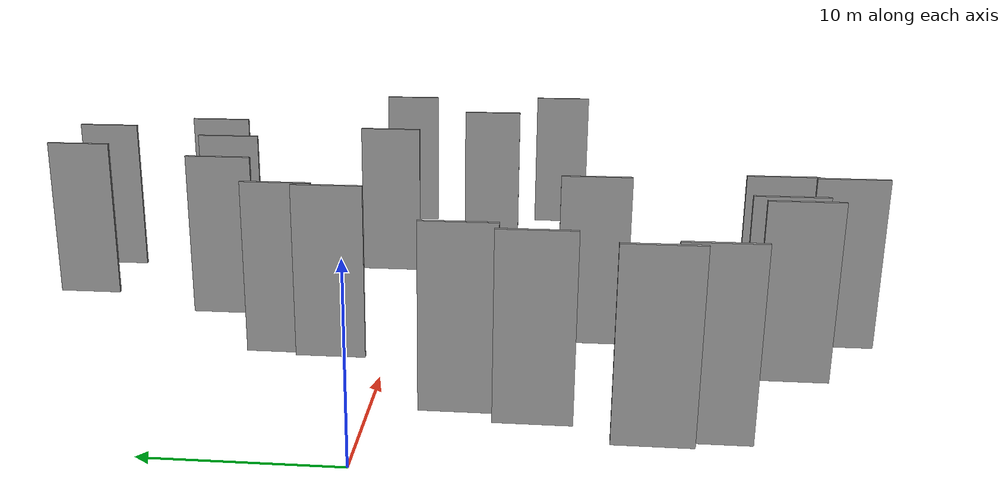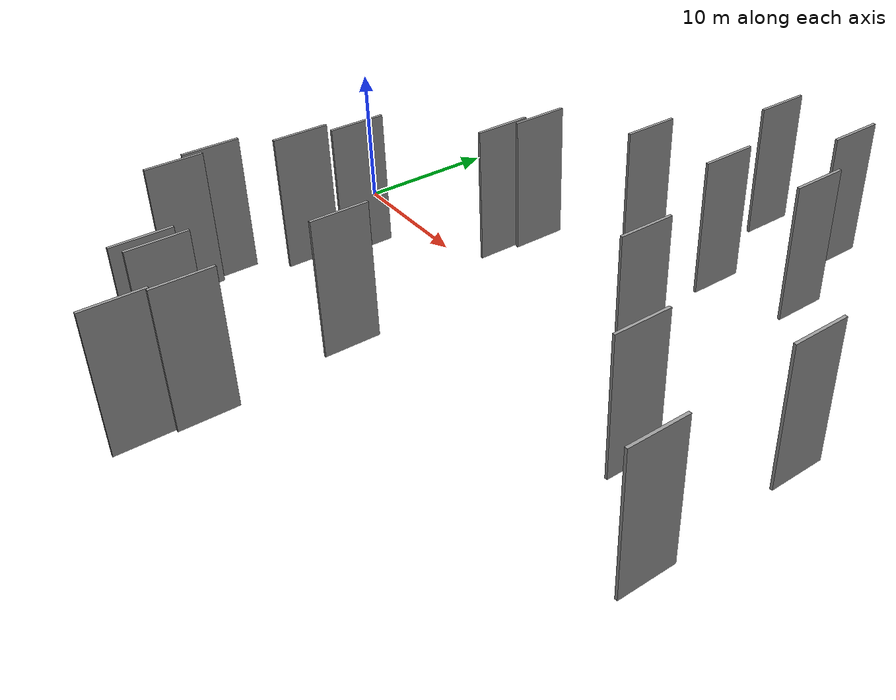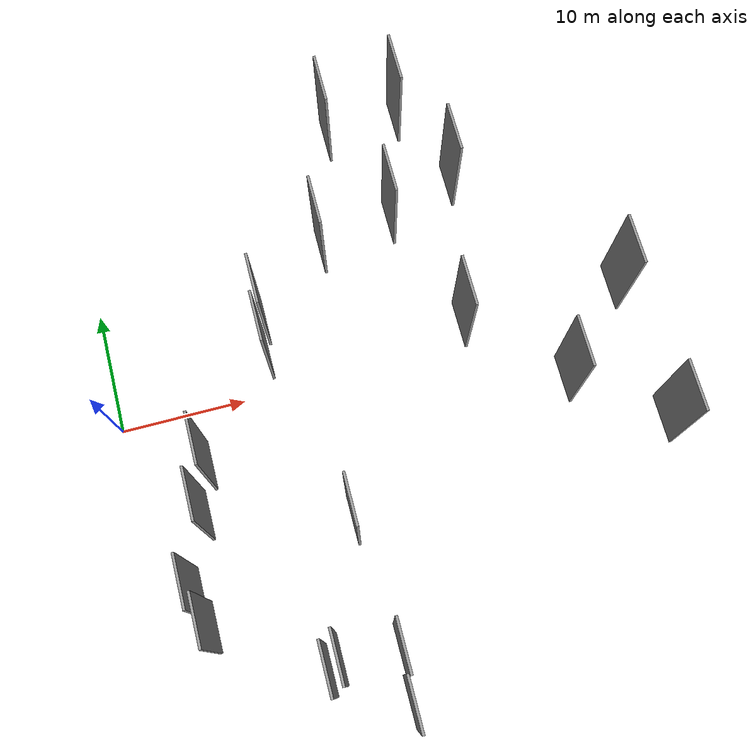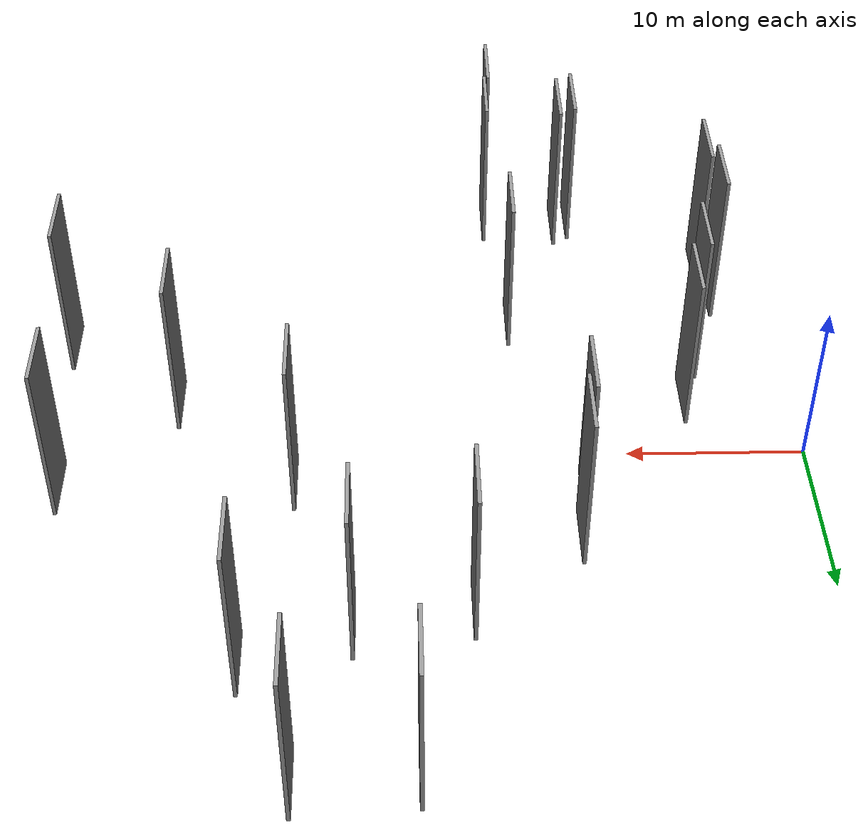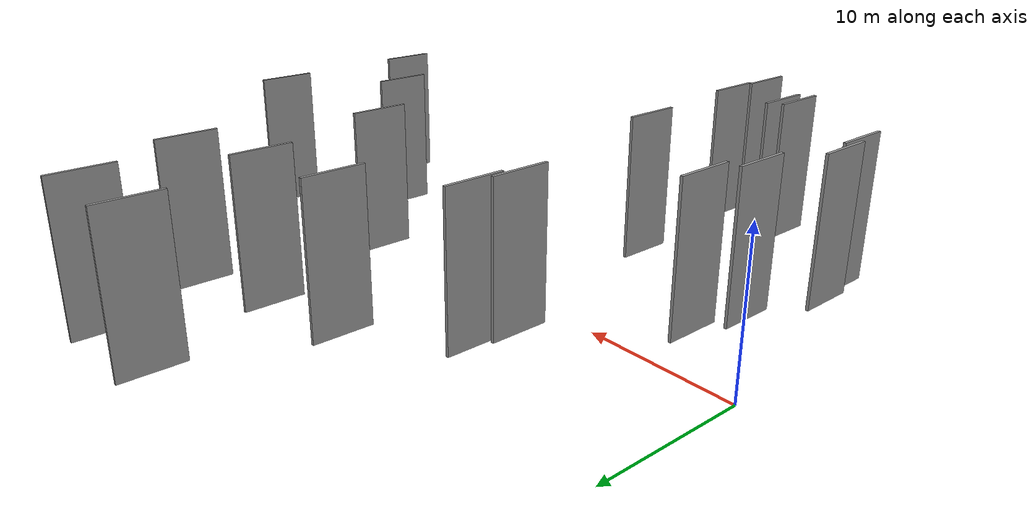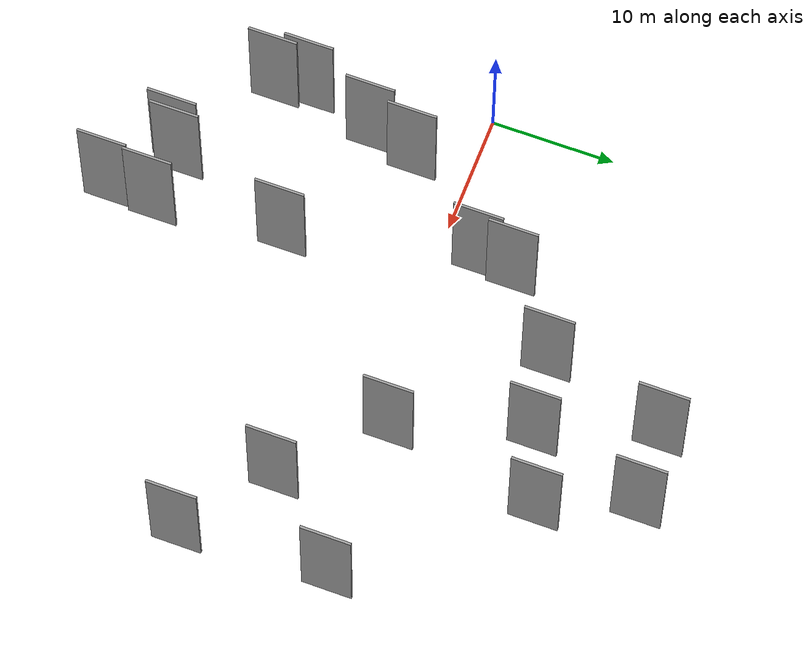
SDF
<sdf version="1.6">
 <world name="default">
  <scene>
   <sky><clouds><speed>12</speed></clouds></sky>
   <ambient>0.4 0.4 0.4 1</ambient>
   <background>0.7 0.7 0.7 1</background>
   <shadows>1</shadows>
  </scene>
  <gravity>0 0 -9.8066</gravity>
  <magnetic_field>6e-06 2.3e-05 -4.2e-05</magnetic_field>
  <physics default="0" name="default_physics" type="ode">
   <ode>
    <solver>
     <type>quick</type>
     <iters>10</iters>
     <sor>1.0</sor>
     <use_dynamic_moi_rescaling>0</use_dynamic_moi_rescaling>
    </solver>
    <constraints>
     <cfm>0</cfm>
     <erp>0.2</erp>
     <contact_max_correcting_vel>100</contact_max_correcting_vel>
     <contact_surface_layer>0.001</contact_surface_layer>
    </constraints>
   </ode>
   <max_step_size>0.004</max_step_size>
   <real_time_factor>1</real_time_factor>
   <real_time_update_rate>250</real_time_update_rate>
  </physics>
  <light name="sun" type="directional">
   <pose>0 0 10 0 0 0</pose>
   <diffuse>0.8 0.8 0.8 1</diffuse>
   <specular>0.2 0.2 0.2 1</specular>
   <attenuation>
    <range>1000</range>
    <constant>0.9</constant>
    <linear>0.01</linear>
    <quadratic>0.001</quadratic>
   </attenuation>
   <direction>-0.5 0.1 -0.9</direction>
  </light>
  <model name="grey_wall_1">
   <static>1</static>
   <pose>3.5172 -14.0131 0.0 0.000000 0.000000 1.570796</pose>
   <link name="link">
    <pose>0 0 5.00 0 0 0</pose>
    <collision name="collision"><geometry><box><size>4.00 0.2 10.00</size></box></geometry></collision>
    <visual name="visual">
     <cast_shadows>0</cast_shadows>
     <geometry><box><size>4.00 0.2 10.00</size></box></geometry>
     <material>
      <script>
       <uri>model://grey_wall/materials/scripts</uri>
       <uri>model://grey_wall/materials/textures</uri>
       <name>vrc/grey_wall</name>
      </script>
     </material>
    </visual>
   </link>
  </model>
  <model name="grey_wall_2">
   <static>1</static>
   <pose>5.2974 -8.2992 0.0 0.000000 0.000000 1.570796</pose>
   <link name="link">
    <pose>0 0 5.00 0 0 0</pose>
    <collision name="collision"><geometry><box><size>4.00 0.2 10.00</size></box></geometry></collision>
    <visual name="visual">
     <cast_shadows>0</cast_shadows>
     <geometry><box><size>4.00 0.2 10.00</size></box></geometry>
     <material>
      <script>
       <uri>model://grey_wall/materials/scripts</uri>
       <uri>model://grey_wall/materials/textures</uri>
       <name>vrc/grey_wall</name>
      </script>
     </material>
    </visual>
   </link>
  </model>
  <model name="grey_wall_3">
   <static>1</static>
   <pose>19.0728 11.2092 0.0 0.000000 0.000000 1.570796</pose>
   <link name="link">
    <pose>0 0 5.00 0 0 0</pose>
    <collision name="collision"><geometry><box><size>4.00 0.2 10.00</size></box></geometry></collision>
    <visual name="visual">
     <cast_shadows>0</cast_shadows>
     <geometry><box><size>4.00 0.2 10.00</size></box></geometry>
     <material>
      <script>
       <uri>model://grey_wall/materials/scripts</uri>
       <uri>model://grey_wall/materials/textures</uri>
       <name>vrc/grey_wall</name>
      </script>
     </material>
    </visual>
   </link>
  </model>
  <model name="grey_wall_4">
   <static>1</static>
   <pose>21.9829 21.2277 0.0 0.000000 0.000000 1.570796</pose>
   <link name="link">
    <pose>0 0 5.00 0 0 0</pose>
    <collision name="collision"><geometry><box><size>4.00 0.2 10.00</size></box></geometry></collision>
    <visual name="visual">
     <cast_shadows>0</cast_shadows>
     <geometry><box><size>4.00 0.2 10.00</size></box></geometry>
     <material>
      <script>
       <uri>model://grey_wall/materials/scripts</uri>
       <uri>model://grey_wall/materials/textures</uri>
       <name>vrc/grey_wall</name>
      </script>
     </material>
    </visual>
   </link>
  </model>
  <model name="grey_wall_5">
   <static>1</static>
   <pose>11.7476 -22.0610 0.0 0.000000 0.000000 1.570796</pose>
   <link name="link">
    <pose>0 0 5.00 0 0 0</pose>
    <collision name="collision"><geometry><box><size>4.00 0.2 10.00</size></box></geometry></collision>
    <visual name="visual">
     <cast_shadows>0</cast_shadows>
     <geometry><box><size>4.00 0.2 10.00</size></box></geometry>
     <material>
      <script>
       <uri>model://grey_wall/materials/scripts</uri>
       <uri>model://grey_wall/materials/textures</uri>
       <name>vrc/grey_wall</name>
      </script>
     </material>
    </visual>
   </link>
  </model>
  <model name="grey_wall_6">
   <static>1</static>
   <pose>13.1169 6.1873 0.0 0.000000 0.000000 1.570796</pose>
   <link name="link">
    <pose>0 0 5.00 0 0 0</pose>
    <collision name="collision"><geometry><box><size>4.00 0.2 10.00</size></box></geometry></collision>
    <visual name="visual">
     <cast_shadows>0</cast_shadows>
     <geometry><box><size>4.00 0.2 10.00</size></box></geometry>
     <material>
      <script>
       <uri>model://grey_wall/materials/scripts</uri>
       <uri>model://grey_wall/materials/textures</uri>
       <name>vrc/grey_wall</name>
      </script>
     </material>
    </visual>
   </link>
  </model>
  <model name="grey_wall_7">
   <static>1</static>
   <pose>28.6198 1.9612 0.0 0.000000 0.000000 1.570796</pose>
   <link name="link">
    <pose>0 0 5.00 0 0 0</pose>
    <collision name="collision"><geometry><box><size>4.00 0.2 10.00</size></box></geometry></collision>
    <visual name="visual">
     <cast_shadows>0</cast_shadows>
     <geometry><box><size>4.00 0.2 10.00</size></box></geometry>
     <material>
      <script>
       <uri>model://grey_wall/materials/scripts</uri>
       <uri>model://grey_wall/materials/textures</uri>
       <name>vrc/grey_wall</name>
      </script>
     </material>
    </visual>
   </link>
  </model>
  <model name="grey_wall_8">
   <static>1</static>
   <pose>31.0365 14.4860 0.0 0.000000 0.000000 1.570796</pose>
   <link name="link">
    <pose>0 0 5.00 0 0 0</pose>
    <collision name="collision"><geometry><box><size>4.00 0.2 10.00</size></box></geometry></collision>
    <visual name="visual">
     <cast_shadows>0</cast_shadows>
     <geometry><box><size>4.00 0.2 10.00</size></box></geometry>
     <material>
      <script>
       <uri>model://grey_wall/materials/scripts</uri>
       <uri>model://grey_wall/materials/textures</uri>
       <name>vrc/grey_wall</name>
      </script>
     </material>
    </visual>
   </link>
  </model>
  <model name="grey_wall_9">
   <static>1</static>
   <pose>16.1525 -11.5254 0.0 0.000000 0.000000 1.570796</pose>
   <link name="link">
    <pose>0 0 5.00 0 0 0</pose>
    <collision name="collision"><geometry><box><size>4.00 0.2 10.00</size></box></geometry></collision>
    <visual name="visual">
     <cast_shadows>0</cast_shadows>
     <geometry><box><size>4.00 0.2 10.00</size></box></geometry>
     <material>
      <script>
       <uri>model://grey_wall/materials/scripts</uri>
       <uri>model://grey_wall/materials/textures</uri>
       <name>vrc/grey_wall</name>
      </script>
     </material>
    </visual>
   </link>
  </model>
  <model name="grey_wall_10">
   <static>1</static>
   <pose>25.2956 12.3357 0.0 0.000000 0.000000 1.570796</pose>
   <link name="link">
    <pose>0 0 5.00 0 0 0</pose>
    <collision name="collision"><geometry><box><size>4.00 0.2 10.00</size></box></geometry></collision>
    <visual name="visual">
     <cast_shadows>0</cast_shadows>
     <geometry><box><size>4.00 0.2 10.00</size></box></geometry>
     <material>
      <script>
       <uri>model://grey_wall/materials/scripts</uri>
       <uri>model://grey_wall/materials/textures</uri>
       <name>vrc/grey_wall</name>
      </script>
     </material>
    </visual>
   </link>
  </model>
  <model name="grey_wall_11">
   <static>1</static>
   <pose>42.1899 -9.8668 0.0 0.000000 0.000000 1.570796</pose>
   <link name="link">
    <pose>0 0 5.00 0 0 0</pose>
    <collision name="collision"><geometry><box><size>4.00 0.2 10.00</size></box></geometry></collision>
    <visual name="visual">
     <cast_shadows>0</cast_shadows>
     <geometry><box><size>4.00 0.2 10.00</size></box></geometry>
     <material>
      <script>
       <uri>model://grey_wall/materials/scripts</uri>
       <uri>model://grey_wall/materials/textures</uri>
       <name>vrc/grey_wall</name>
      </script>
     </material>
    </visual>
   </link>
  </model>
  <model name="grey_wall_12">
   <static>1</static>
   <pose>12.6764 -21.4972 0.0 0.000000 0.000000 1.570796</pose>
   <link name="link">
    <pose>0 0 5.00 0 0 0</pose>
    <collision name="collision"><geometry><box><size>4.00 0.2 10.00</size></box></geometry></collision>
    <visual name="visual">
     <cast_shadows>0</cast_shadows>
     <geometry><box><size>4.00 0.2 10.00</size></box></geometry>
     <material>
      <script>
       <uri>model://grey_wall/materials/scripts</uri>
       <uri>model://grey_wall/materials/textures</uri>
       <name>vrc/grey_wall</name>
      </script>
     </material>
    </visual>
   </link>
  </model>
  <model name="grey_wall_13">
   <static>1</static>
   <pose>16.9391 -25.7244 0.0 0.000000 0.000000 1.570796</pose>
   <link name="link">
    <pose>0 0 5.00 0 0 0</pose>
    <collision name="collision"><geometry><box><size>4.00 0.2 10.00</size></box></geometry></collision>
    <visual name="visual">
     <cast_shadows>0</cast_shadows>
     <geometry><box><size>4.00 0.2 10.00</size></box></geometry>
     <material>
      <script>
       <uri>model://grey_wall/materials/scripts</uri>
       <uri>model://grey_wall/materials/textures</uri>
       <name>vrc/grey_wall</name>
      </script>
     </material>
    </visual>
   </link>
  </model>
  <model name="grey_wall_14">
   <static>1</static>
   <pose>17.1802 -21.9147 0.0 0.000000 0.000000 1.570796</pose>
   <link name="link">
    <pose>0 0 5.00 0 0 0</pose>
    <collision name="collision"><geometry><box><size>4.00 0.2 10.00</size></box></geometry></collision>
    <visual name="visual">
     <cast_shadows>0</cast_shadows>
     <geometry><box><size>4.00 0.2 10.00</size></box></geometry>
     <material>
      <script>
       <uri>model://grey_wall/materials/scripts</uri>
       <uri>model://grey_wall/materials/textures</uri>
       <name>vrc/grey_wall</name>
      </script>
     </material>
    </visual>
   </link>
  </model>
  <model name="grey_wall_15">
   <static>1</static>
   <pose>28.1559 21.6206 0.0 0.000000 0.000000 1.570796</pose>
   <link name="link">
    <pose>0 0 5.00 0 0 0</pose>
    <collision name="collision"><geometry><box><size>4.00 0.2 10.00</size></box></geometry></collision>
    <visual name="visual">
     <cast_shadows>0</cast_shadows>
     <geometry><box><size>4.00 0.2 10.00</size></box></geometry>
     <material>
      <script>
       <uri>model://grey_wall/materials/scripts</uri>
       <uri>model://grey_wall/materials/textures</uri>
       <name>vrc/grey_wall</name>
      </script>
     </material>
    </visual>
   </link>
  </model>
  <model name="grey_wall_16">
   <static>1</static>
   <pose>41.6382 1.9834 0.0 0.000000 0.000000 1.570796</pose>
   <link name="link">
    <pose>0 0 5.00 0 0 0</pose>
    <collision name="collision"><geometry><box><size>4.00 0.2 10.00</size></box></geometry></collision>
    <visual name="visual">
     <cast_shadows>0</cast_shadows>
     <geometry><box><size>4.00 0.2 10.00</size></box></geometry>
     <material>
      <script>
       <uri>model://grey_wall/materials/scripts</uri>
       <uri>model://grey_wall/materials/textures</uri>
       <name>vrc/grey_wall</name>
      </script>
     </material>
    </visual>
   </link>
  </model>
  <model name="grey_wall_17">
   <static>1</static>
   <pose>35.4722 -4.6636 0.0 0.000000 0.000000 1.570796</pose>
   <link name="link">
    <pose>0 0 5.00 0 0 0</pose>
    <collision name="collision"><geometry><box><size>4.00 0.2 10.00</size></box></geometry></collision>
    <visual name="visual">
     <cast_shadows>0</cast_shadows>
     <geometry><box><size>4.00 0.2 10.00</size></box></geometry>
     <material>
      <script>
       <uri>model://grey_wall/materials/scripts</uri>
       <uri>model://grey_wall/materials/textures</uri>
       <name>vrc/grey_wall</name>
      </script>
     </material>
    </visual>
   </link>
  </model>
  <model name="grey_wall_18">
   <static>1</static>
   <pose>4.0375 -16.7904 0.0 0.000000 0.000000 1.570796</pose>
   <link name="link">
    <pose>0 0 5.00 0 0 0</pose>
    <collision name="collision"><geometry><box><size>4.00 0.2 10.00</size></box></geometry></collision>
    <visual name="visual">
     <cast_shadows>0</cast_shadows>
     <geometry><box><size>4.00 0.2 10.00</size></box></geometry>
     <material>
      <script>
       <uri>model://grey_wall/materials/scripts</uri>
       <uri>model://grey_wall/materials/textures</uri>
       <name>vrc/grey_wall</name>
      </script>
     </material>
    </visual>
   </link>
  </model>
  <model name="grey_wall_19">
   <static>1</static>
   <pose>12.7436 3.2574 0.0 0.000000 0.000000 1.570796</pose>
   <link name="link">
    <pose>0 0 5.00 0 0 0</pose>
    <collision name="collision"><geometry><box><size>4.00 0.2 10.00</size></box></geometry></collision>
    <visual name="visual">
     <cast_shadows>0</cast_shadows>
     <geometry><box><size>4.00 0.2 10.00</size></box></geometry>
     <material>
      <script>
       <uri>model://grey_wall/materials/scripts</uri>
       <uri>model://grey_wall/materials/textures</uri>
       <name>vrc/grey_wall</name>
      </script>
     </material>
    </visual>
   </link>
  </model>
  <model name="grey_wall_20">
   <static>1</static>
   <pose>6.3170 -4.4895 0.0 0.000000 0.000000 1.570796</pose>
   <link name="link">
    <pose>0 0 5.00 0 0 0</pose>
    <collision name="collision"><geometry><box><size>4.00 0.2 10.00</size></box></geometry></collision>
    <visual name="visual">
     <cast_shadows>0</cast_shadows>
     <geometry><box><size>4.00 0.2 10.00</size></box></geometry>
     <material>
      <script>
       <uri>model://grey_wall/materials/scripts</uri>
       <uri>model://grey_wall/materials/textures</uri>
       <name>vrc/grey_wall</name>
      </script>
     </material>
    </visual>
   </link>
  </model>
 </world>
</sdf>
